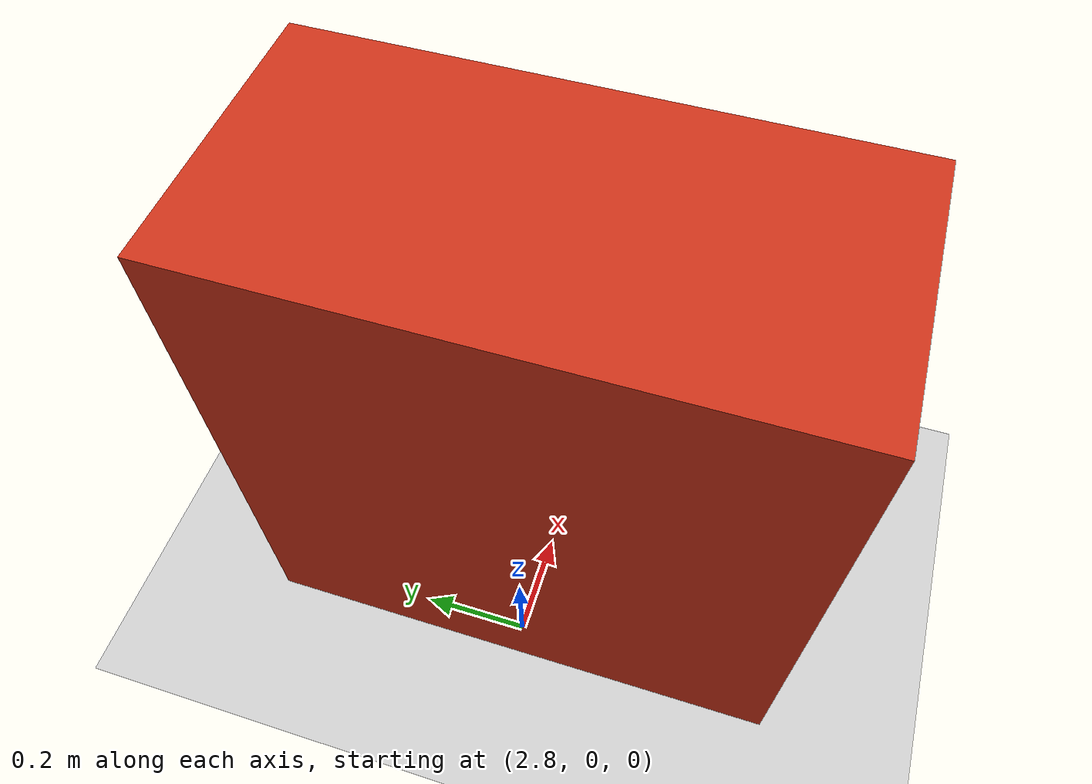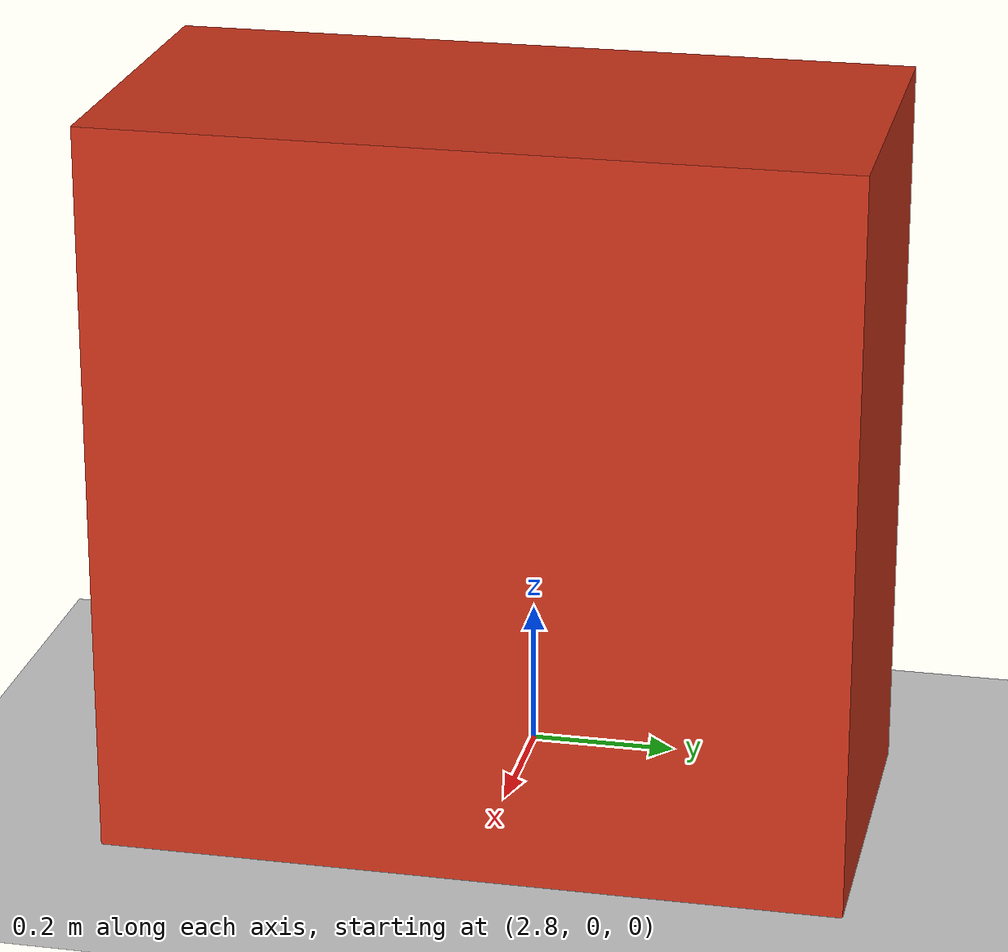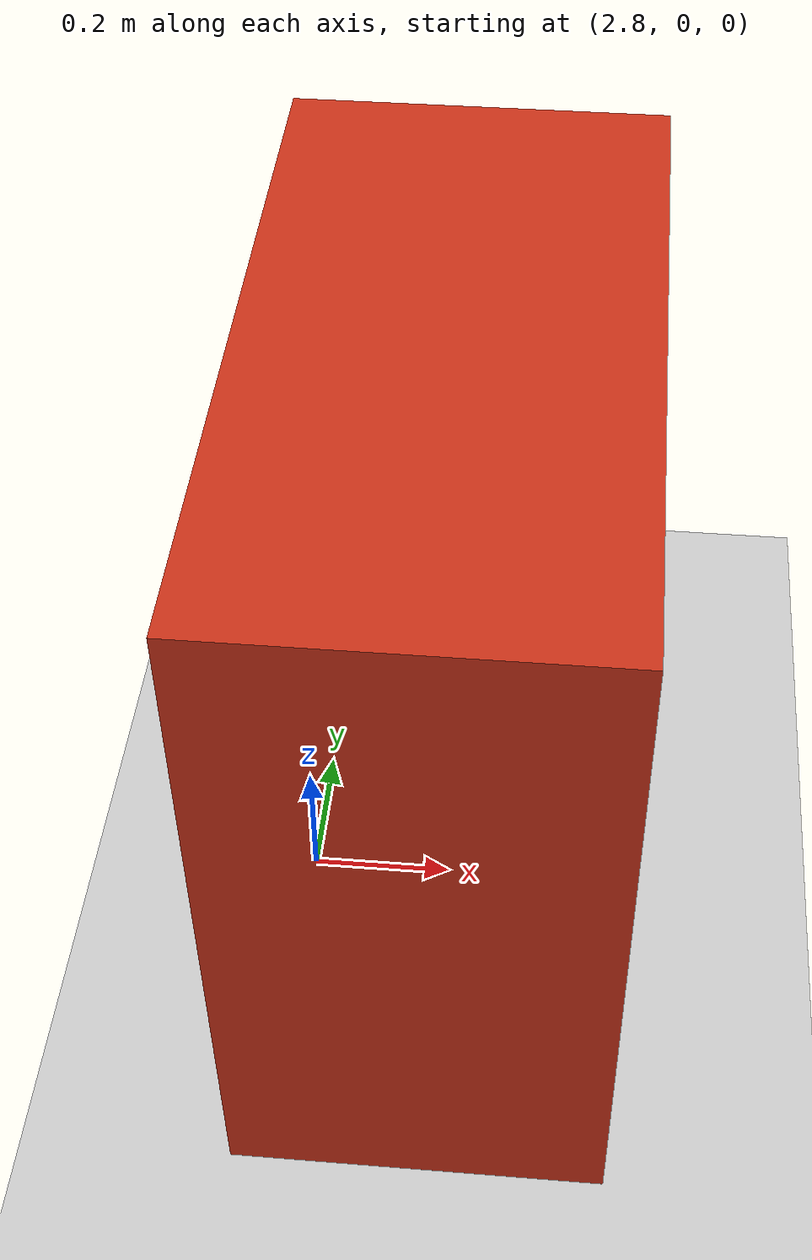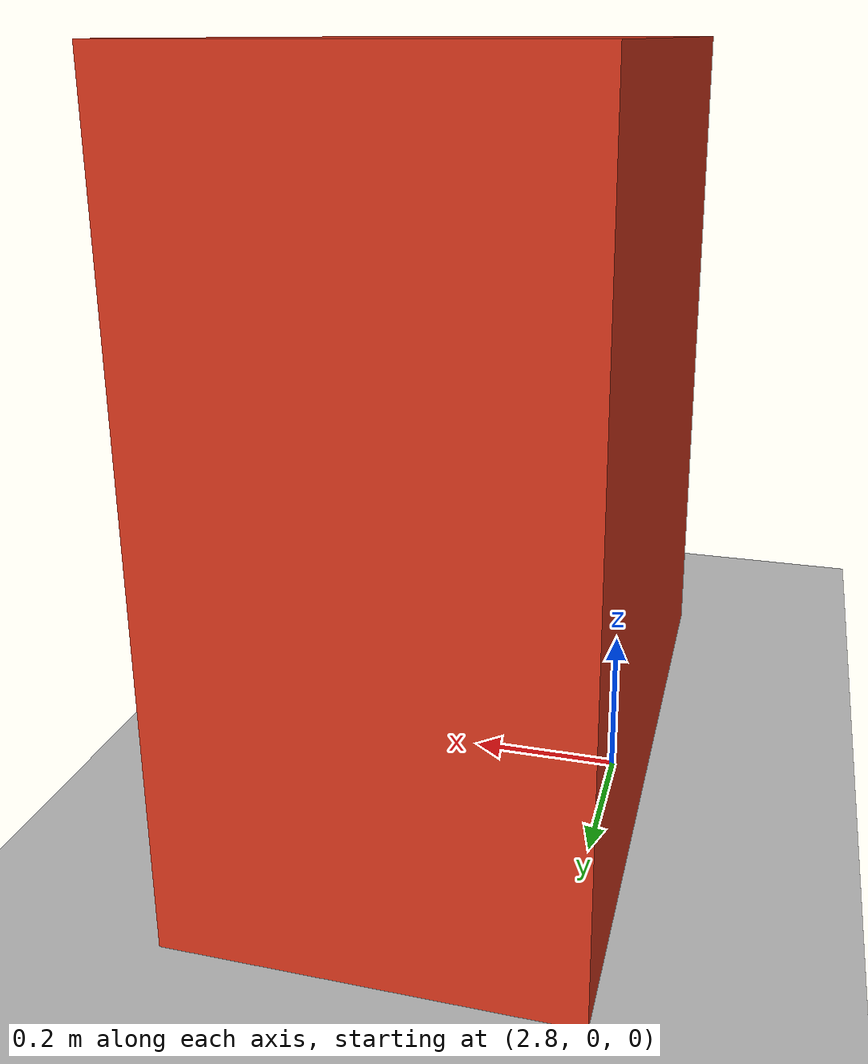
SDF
<?xml version="1.0"?>
<sdf version="1.6">
  <world name="ground_robot_world">
    <include><uri>model://ground_plane</uri></include>
    <include><uri>model://sun</uri></include>

    <model name="ground_scan_obstacle">
      <static>true</static>
      <pose>3.0 0.0 0.5 0 0 0</pose>
      <link name="link">
        <collision name="collision">
          <geometry><box><size>0.5 1.0 1.0</size></box></geometry>
        </collision>
        <visual name="visual">
          <geometry><box><size>0.5 1.0 1.0</size></box></geometry>
          <material>
            <ambient>0.8 0.2 0.1 1</ambient>
            <diffuse>0.8 0.2 0.1 1</diffuse>
          </material>
        </visual>
      </link>
    </model>
  </world>
</sdf>
